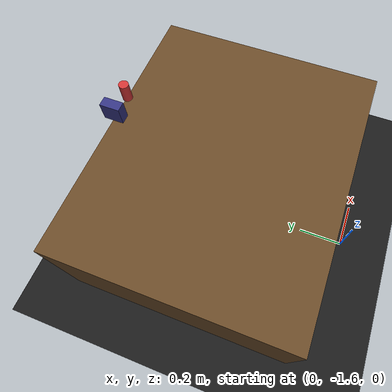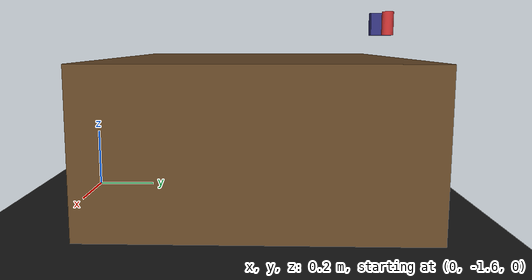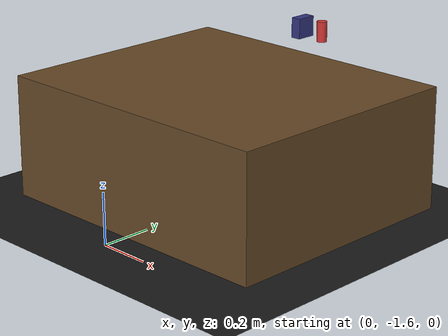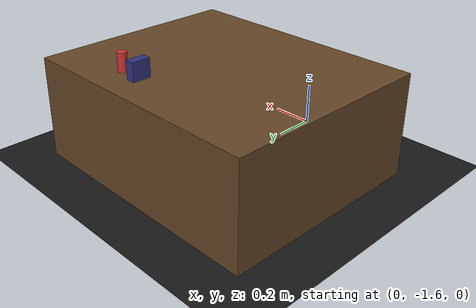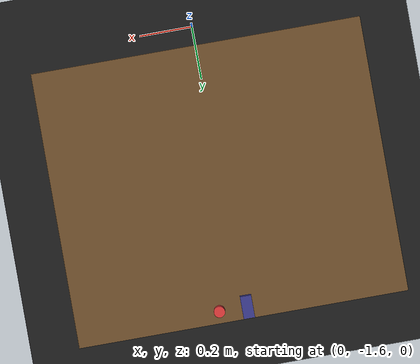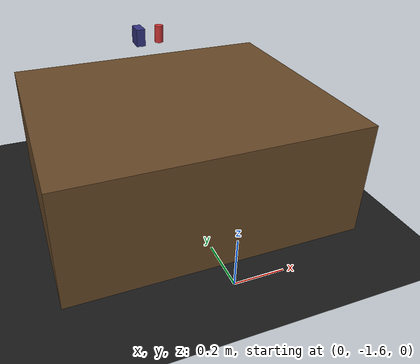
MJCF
<mujoco model="scene_environment">
  <statistic center="0 0 .75" extent="1.2" meansize="0.05"/>

  <visual>
    <headlight diffuse="0.6 0.6 0.6" ambient="0.3 0.3 0.3" specular="0 0 0"/>
    <rgba haze="0.15 0.25 0.35 1"/>
    <global azimuth="-120" elevation="-20"/>
  </visual>

  <asset>
    <material name="floor" rgba=".1 .1 .1 1" reflectance="0.1"/>
    <!-- Solid wood tone (matches Stretch table look without requiring wood.png next to every merge root). -->
    <material name="wood" rgba="0.4 0.28 0.15 1"/>
    <material name="object" rgba=".2 .2 .2 1"/>
    <texture type="skybox" builtin="gradient" rgb1="0.44 0.80 1.00" rgb2="1 1 1" width="512" height="3072"/>
  </asset>

  <worldbody>
    <light pos="0 0 1.5" dir="0 0 -1" directional="true"/>
    <geom name="floor" size="0 0 0.05" type="plane" material="floor" contype="1" conaffinity="1"/>
    <!-- Fixed 3rd-person view for manip MP4 smokes (EMET_SIM_THIRD_PERSON=1). Looks at table/objects. -->
    <camera name="third_person" pos="1.55 0.85 1.55" xyaxes="-0.65 0.76 0  -0.42 -0.36 0.83" fovy="50"/>
    <body name="table" pos="0 -1 .24">
      <geom type="box" size=".6 .5 .24" mass="1" material="wood" contype="1" conaffinity="1"/>
    </body>
    <body name="object1" pos="-.02 -0.55 .6">
      <freejoint/>
      <geom type="box" size=".02 .04 .04" mass=".5" rgba=".2 .2 .5 1" contype="1" conaffinity="1"/>
    </body>
    <body name="object2" pos=".08 -0.55 .6">
      <freejoint/>
      <geom type="cylinder" size=".02 .04 .04" mass=".5" rgba=".8 .2 .2 1" contype="1" conaffinity="1"/>
    </body>
  </worldbody>
</mujoco>
